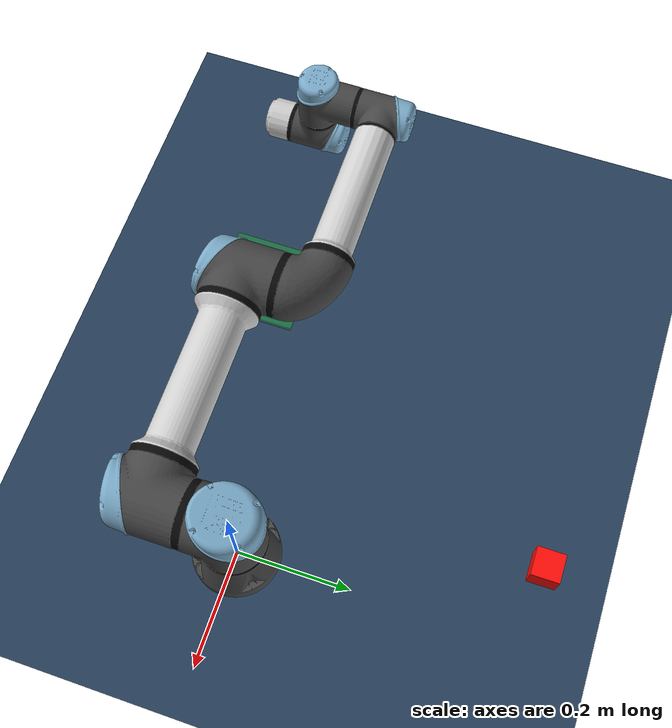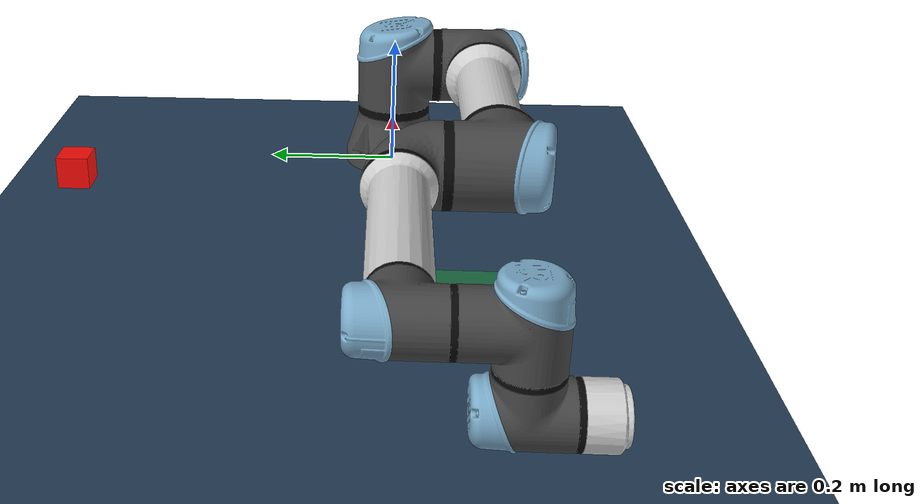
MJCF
<mujoco model="ur5e_2f85_scene">
  <compiler angle="radian" autolimits="true"/>

  <option integrator="implicitfast" cone="elliptic" impratio="10" viscosity="0.1"/>

  <statistic center="0.3 0 0.45" extent="0.9"/>

  <visual>
    <headlight diffuse="0.6 0.6 0.6" ambient="0.15 0.15 0.15" specular="0 0 0"/>
    <rgba haze="0.15 0.25 0.35 1"/>
    <global azimuth="120" elevation="-20"/>
  </visual>

  <default>
    <default class="ur5e">
      <material specular="0.5" shininess="0.25"/>
      <joint axis="0 1 0" range="-6.28319 6.28319" armature="0.1"/>
      <general gaintype="fixed" biastype="affine" ctrlrange="-6.2831 6.2831" gainprm="2000" biasprm="0 -2000 -400"
        forcerange="-150 150"/>
      <default class="size3">
        <default class="size3_limited">
          <joint range="-3.1415 3.1415"/>
          <general ctrlrange="-3.1415 3.1415"/>
        </default>
      </default>
      <default class="size1">
        <general gainprm="500" biasprm="0 -500 -100" forcerange="-28 28"/>
      </default>
      <default class="visual">
        <geom type="mesh" contype="0" conaffinity="0" group="2"/>
      </default>
      <default class="collision">
        <geom type="capsule" group="3"/>
        <default class="eef_collision">
          <geom type="cylinder"/>
        </default>
      </default>
      <site size="0.001" rgba="0.5 0.5 0.5 0.3" group="4"/>
    </default>

    <default class="2f85">
      <mesh scale="0.001 0.001 0.001"/>
      <general biastype="affine"/>
      <joint axis="1 0 0"/>
      <default class="driver">
        <joint range="0 0.8" armature="0.005" damping="0.1" solimplimit="0.95 0.99 0.001" solreflimit="0.005 1"/>
      </default>
      <default class="follower">
        <joint range="-0.872664 0.872664" armature="0.001" pos="0 -0.018 0.0065" solimplimit="0.95 0.99 0.001"
          solreflimit="0.005 1"/>
      </default>
      <default class="spring_link">
        <joint range="-0.29670597283 0.8" armature="0.001" stiffness="0.05" springref="2.62" damping="0.00125"/>
      </default>
      <default class="coupler">
        <joint range="-1.57 0" armature="0.001" solimplimit="0.95 0.99 0.001" solreflimit="0.005 1"/>
      </default>
      <default class="gripper_visual">
        <geom type="mesh" contype="0" conaffinity="0" group="2"/>
      </default>
      <default class="gripper_collision">
        <geom type="mesh" group="3"/>
        <default class="pad_box1">
          <geom mass="0" type="box" pos="0 -0.0026 0.03" size="0.011 0.004 0.025" friction="30.0 2.0 0.2" condim="6"
            solimp="0.95 0.99 0.001" solref="0.004 1" priority="1" rgba="0.55 0.55 0.55 1"/>
        </default>
        <default class="pad_box2">
          <geom mass="0" type="box" pos="0 -0.0026 0.005" size="0.011 0.004 0.012" friction="30.0 2.0 0.2" condim="6"
            solimp="0.95 0.99 0.001" solref="0.004 1" priority="1" rgba="0.45 0.45 0.45 1"/>
        </default>
      </default>
    </default>
  </default>

  <asset>
    <texture type="skybox" builtin="gradient" rgb1="0.3 0.5 0.7" rgb2="0 0 0" width="512" height="3072"/>
    <texture type="2d" name="groundplane" builtin="checker" mark="edge" rgb1="0.2 0.3 0.4" rgb2="0.1 0.2 0.3"
      markrgb="0.8 0.8 0.8" width="300" height="300"/>
    <material name="groundplane" texture="groundplane" texuniform="true" texrepeat="5 5" reflectance="0.2"/>

    <material class="ur5e" name="black" rgba="0.033 0.033 0.033 1"/>
    <material class="ur5e" name="jointgray" rgba="0.278 0.278 0.278 1"/>
    <material class="ur5e" name="linkgray" rgba="0.82 0.82 0.82 1"/>
    <material class="ur5e" name="urblue" rgba="0.49 0.678 0.8 1"/>

    <material name="metal" rgba="0.58 0.58 0.58 1"/>
    <material name="silicone" rgba="0.1882 0.1882 0.1882 1"/>
    <material name="gray" rgba="0.4627 0.4627 0.4627 1"/>

    <mesh file="universal_robots_ur5e/assets/base_0.obj"/>
    <mesh file="universal_robots_ur5e/assets/base_1.obj"/>
    <mesh file="universal_robots_ur5e/assets/shoulder_0.obj"/>
    <mesh file="universal_robots_ur5e/assets/shoulder_1.obj"/>
    <mesh file="universal_robots_ur5e/assets/shoulder_2.obj"/>
    <mesh file="universal_robots_ur5e/assets/upperarm_0.obj"/>
    <mesh file="universal_robots_ur5e/assets/upperarm_1.obj"/>
    <mesh file="universal_robots_ur5e/assets/upperarm_2.obj"/>
    <mesh file="universal_robots_ur5e/assets/upperarm_3.obj"/>
    <mesh file="universal_robots_ur5e/assets/forearm_0.obj"/>
    <mesh file="universal_robots_ur5e/assets/forearm_1.obj"/>
    <mesh file="universal_robots_ur5e/assets/forearm_2.obj"/>
    <mesh file="universal_robots_ur5e/assets/forearm_3.obj"/>
    <mesh file="universal_robots_ur5e/assets/wrist1_0.obj"/>
    <mesh file="universal_robots_ur5e/assets/wrist1_1.obj"/>
    <mesh file="universal_robots_ur5e/assets/wrist1_2.obj"/>
    <mesh file="universal_robots_ur5e/assets/wrist2_0.obj"/>
    <mesh file="universal_robots_ur5e/assets/wrist2_1.obj"/>
    <mesh file="universal_robots_ur5e/assets/wrist2_2.obj"/>
    <mesh file="universal_robots_ur5e/assets/wrist3.obj"/>

    <mesh class="2f85" file="robotiq_2f85/assets/base_mount.stl"/>
    <mesh class="2f85" file="robotiq_2f85/assets/base.stl"/>
    <mesh class="2f85" file="robotiq_2f85/assets/driver.stl"/>
    <mesh class="2f85" file="robotiq_2f85/assets/coupler.stl"/>
    <mesh class="2f85" file="robotiq_2f85/assets/follower.stl"/>
    <mesh class="2f85" file="robotiq_2f85/assets/pad.stl"/>
    <mesh class="2f85" file="robotiq_2f85/assets/silicone_pad.stl"/>
    <mesh class="2f85" file="robotiq_2f85/assets/spring_link.stl"/>
  </asset>

  <worldbody>
    <light pos="0 0 1.5" dir="0 0 -1" directional="true"/>
    <geom name="floor" size="0 0 0.05" type="plane" material="groundplane"/>
    <camera name="top_camera" pos="-0.32 0.18 1.35" xyaxes="1 0 0 0 1 0" fovy="55"/>
    <body name="place_marker" pos="-0.499 -0.134 0.005">
      <geom type="box" size="0.08 0.08 0.005" rgba="0.1 0.7 0.2 0.45" contype="0" conaffinity="0"/>
    </body>

    <body name="base" quat="0 0 0 -1" childclass="ur5e">
      <inertial mass="4.0" pos="0 0 0" diaginertia="0.00443333156 0.00443333156 0.0072"/>
      <geom mesh="base_0" material="black" class="visual"/>
      <geom mesh="base_1" material="jointgray" class="visual"/>
      <body name="shoulder_link" pos="0 0 0.163">
        <inertial mass="3.7" pos="0 0 0" diaginertia="0.0102675 0.0102675 0.00666"/>
        <joint name="shoulder_pan_joint" class="size3" axis="0 0 1"/>
        <geom mesh="shoulder_0" material="urblue" class="visual"/>
        <geom mesh="shoulder_1" material="black" class="visual"/>
        <geom mesh="shoulder_2" material="jointgray" class="visual"/>
        <geom class="collision" size="0.06 0.06" pos="0 0 -0.04"/>
        <body name="upper_arm_link" pos="0 0.138 0" quat="1 0 1 0">
          <inertial mass="8.393" pos="0 0 0.2125" diaginertia="0.133886 0.133886 0.0151074"/>
          <joint name="shoulder_lift_joint" class="size3"/>
          <geom mesh="upperarm_0" material="linkgray" class="visual"/>
          <geom mesh="upperarm_1" material="black" class="visual"/>
          <geom mesh="upperarm_2" material="jointgray" class="visual"/>
          <geom mesh="upperarm_3" material="urblue" class="visual"/>
          <geom class="collision" pos="0 -0.04 0" quat="1 1 0 0" size="0.06 0.06"/>
          <geom class="collision" size="0.05 0.2" pos="0 0 0.2"/>
          <body name="forearm_link" pos="0 -0.131 0.425">
            <inertial mass="2.275" pos="0 0 0.196" diaginertia="0.0311796 0.0311796 0.004095"/>
            <joint name="elbow_joint" class="size3_limited"/>
            <geom mesh="forearm_0" material="urblue" class="visual"/>
            <geom mesh="forearm_1" material="linkgray" class="visual"/>
            <geom mesh="forearm_2" material="black" class="visual"/>
            <geom mesh="forearm_3" material="jointgray" class="visual"/>
            <geom class="collision" pos="0 0.08 0" quat="1 1 0 0" size="0.055 0.06"/>
            <geom class="collision" size="0.038 0.19" pos="0 0 0.2"/>
            <body name="wrist_1_link" pos="0 0 0.392" quat="1 0 1 0">
              <inertial mass="1.219" pos="0 0.127 0" diaginertia="0.0025599 0.0025599 0.0021942"/>
              <joint name="wrist_1_joint" class="size1"/>
              <geom mesh="wrist1_0" material="black" class="visual"/>
              <geom mesh="wrist1_1" material="urblue" class="visual"/>
              <geom mesh="wrist1_2" material="jointgray" class="visual"/>
              <geom class="collision" pos="0 0.05 0" quat="1 1 0 0" size="0.04 0.07"/>
              <body name="wrist_2_link" pos="0 0.127 0">
                <inertial mass="1.219" pos="0 0 0.1" diaginertia="0.0025599 0.0025599 0.0021942"/>
                <joint name="wrist_2_joint" axis="0 0 1" class="size1"/>
                <geom mesh="wrist2_0" material="black" class="visual"/>
                <geom mesh="wrist2_1" material="urblue" class="visual"/>
                <geom mesh="wrist2_2" material="jointgray" class="visual"/>
                <geom class="collision" size="0.04 0.06" pos="0 0 0.04"/>
                <geom class="collision" pos="0 0.02 0.1" quat="1 1 0 0" size="0.04 0.04"/>
                <body name="wrist_3_link" pos="0 0 0.1">
                  <inertial mass="0.1889" pos="0 0.0771683 0" quat="1 0 0 1"
                    diaginertia="0.000132134 9.90863e-05 9.90863e-05"/>
                  <joint name="wrist_3_joint" class="size1"/>
                  <geom material="linkgray" mesh="wrist3" class="visual"/>
                  <geom class="eef_collision" pos="0 0.08 0" quat="1 1 0 0" size="0.04 0.02"/>
                  <site name="attachment_site" pos="0 0.1 0" quat="-1 1 0 0"/>

                  <body name="base_mount" pos="0 0.1 0.007" quat="-1 1 0 0" childclass="2f85">
                    <geom class="gripper_visual" mesh="base_mount" material="black"/>
                    <geom class="gripper_collision" mesh="base_mount"/>
                    <body name="gripper_base" pos="0 0 0.0038" quat="1 0 0 -1">
                      <inertial mass="0.777441" pos="0 -2.70394e-05 0.0354675" quat="1 -0.00152849 0 0"
                        diaginertia="0.000260285 0.000225381 0.000152708"/>
                      <geom class="gripper_visual" mesh="base" material="black"/>
                      <geom class="gripper_collision" mesh="base"/>
                      <site name="pinch" pos="0 0 0.145" type="sphere" group="5" rgba="0.9 0.9 0.9 1" size="0.005"/>
                      <camera name="gripper_depth_camera" pos="0 0 0.23" xyaxes="1 0 0 0 -1 0" fovy="70"/>
                      <body name="right_driver" pos="0 0.0306011 0.054904">
                        <inertial mass="0.00899563" pos="2.96931e-12 0.0177547 0.00107314" quat="0.681301 0.732003 0 0"
                          diaginertia="1.72352e-06 1.60906e-06 3.22006e-07"/>
                        <joint name="right_driver_joint" class="driver"/>
                        <geom class="gripper_visual" mesh="driver" material="gray"/>
                        <geom class="gripper_collision" mesh="driver"/>
                        <body name="right_coupler" pos="0 0.0315 -0.0041">
                          <inertial mass="0.0140974" pos="0 0.00301209 0.0232175" quat="0.705636 -0.0455904 0.0455904 0.705636"
                            diaginertia="4.16206e-06 3.52216e-06 8.88131e-07"/>
                          <joint name="right_coupler_joint" class="coupler"/>
                          <geom class="gripper_visual" mesh="coupler" material="black"/>
                          <geom class="gripper_collision" mesh="coupler"/>
                        </body>
                      </body>
                      <body name="right_spring_link" pos="0 0.0132 0.0609">
                        <inertial mass="0.0221642" pos="-8.65005e-09 0.0181624 0.0212658" quat="0.663403 -0.244737 0.244737 0.663403"
                          diaginertia="8.96853e-06 6.71733e-06 2.63931e-06"/>
                        <joint name="right_spring_link_joint" class="spring_link"/>
                        <geom class="gripper_visual" mesh="spring_link" material="black"/>
                        <geom class="gripper_collision" mesh="spring_link"/>
                        <body name="right_follower" pos="0 0.055 0.0375">
                          <inertial mass="0.0125222" pos="0 -0.011046 0.0124786" quat="1 0.1664 0 0"
                            diaginertia="2.67415e-06 2.4559e-06 6.02031e-07"/>
                          <joint name="right_follower_joint" class="follower"/>
                          <geom class="gripper_visual" mesh="follower" material="black"/>
                          <geom class="gripper_collision" mesh="follower"/>
                          <body name="right_pad" pos="0 -0.0189 0.01352">
                            <geom class="pad_box1" name="right_pad1"/>
                            <geom class="pad_box2" name="right_pad2"/>
                            <inertial mass="0.0035" pos="0 -0.0025 0.0185" quat="0.707107 0 0 0.707107"
                              diaginertia="4.73958e-07 3.64583e-07 1.23958e-07"/>
                            <geom class="gripper_visual" mesh="pad"/>
                            <body name="right_silicone_pad">
                              <geom class="gripper_visual" mesh="silicone_pad" material="black"/>
                            </body>
                          </body>
                        </body>
                      </body>

                      <body name="left_driver" pos="0 -0.0306011 0.054904" quat="0 0 0 1">
                        <inertial mass="0.00899563" pos="0 0.0177547 0.00107314" quat="0.681301 0.732003 0 0"
                          diaginertia="1.72352e-06 1.60906e-06 3.22006e-07"/>
                        <joint name="left_driver_joint" class="driver"/>
                        <geom class="gripper_visual" mesh="driver" material="gray"/>
                        <geom class="gripper_collision" mesh="driver"/>
                        <body name="left_coupler" pos="0 0.0315 -0.0041">
                          <inertial mass="0.0140974" pos="0 0.00301209 0.0232175" quat="0.705636 -0.0455904 0.0455904 0.705636"
                            diaginertia="4.16206e-06 3.52216e-06 8.88131e-07"/>
                          <joint name="left_coupler_joint" class="coupler"/>
                          <geom class="gripper_visual" mesh="coupler" material="black"/>
                          <geom class="gripper_collision" mesh="coupler"/>
                        </body>
                      </body>
                      <body name="left_spring_link" pos="0 -0.0132 0.0609" quat="0 0 0 1">
                        <inertial mass="0.0221642" pos="-8.65005e-09 0.0181624 0.0212658" quat="0.663403 -0.244737 0.244737 0.663403"
                          diaginertia="8.96853e-06 6.71733e-06 2.63931e-06"/>
                        <joint name="left_spring_link_joint" class="spring_link"/>
                        <geom class="gripper_visual" mesh="spring_link" material="black"/>
                        <geom class="gripper_collision" mesh="spring_link"/>
                        <body name="left_follower" pos="0 0.055 0.0375">
                          <inertial mass="0.0125222" pos="0 -0.011046 0.0124786" quat="1 0.1664 0 0"
                            diaginertia="2.67415e-06 2.4559e-06 6.02031e-07"/>
                          <joint name="left_follower_joint" class="follower"/>
                          <geom class="gripper_visual" mesh="follower" material="black"/>
                          <geom class="gripper_collision" mesh="follower"/>
                          <body name="left_pad" pos="0 -0.0189 0.01352">
                            <geom class="pad_box1" name="left_pad1"/>
                            <geom class="pad_box2" name="left_pad2"/>
                            <inertial mass="0.0035" pos="0 -0.0025 0.0185" quat="1 0 0 1"
                              diaginertia="4.73958e-07 3.64583e-07 1.23958e-07"/>
                            <geom class="gripper_visual" mesh="pad"/>
                            <body name="left_silicone_pad">
                              <geom class="gripper_visual" mesh="silicone_pad" material="black"/>
                            </body>
                          </body>
                        </body>
                      </body>
                    </body>
                  </body>
                </body>
              </body>
            </body>
          </body>
        </body>
      </body>
    </body>

    <body name="demo_object" pos="-0.134 0.499 0.025">
      <freejoint/>
      <geom name="demo_object_geom" type="box" size="0.025 0.025 0.025" mass="0.005" rgba="1 0.05 0.03 1"
        friction="30.0 2.0 0.2" condim="6" solimp="0.95 0.99 0.001" solref="0.004 1" priority="1"/>
    </body>
  </worldbody>

  <contact>
    <exclude body1="gripper_base" body2="left_driver"/>
    <exclude body1="gripper_base" body2="right_driver"/>
    <exclude body1="gripper_base" body2="left_spring_link"/>
    <exclude body1="gripper_base" body2="right_spring_link"/>
    <exclude body1="right_coupler" body2="right_follower"/>
    <exclude body1="left_coupler" body2="left_follower"/>
  </contact>

  <tendon>
    <fixed name="split">
      <joint joint="right_driver_joint" coef="0.5"/>
      <joint joint="left_driver_joint" coef="0.5"/>
    </fixed>
  </tendon>

  <equality>
    <connect anchor="0 0 0" body1="right_follower" body2="right_coupler" solimp="0.95 0.99 0.001" solref="0.005 1"/>
    <connect anchor="0 0 0" body1="left_follower" body2="left_coupler" solimp="0.95 0.99 0.001" solref="0.005 1"/>
    <joint joint1="right_driver_joint" joint2="left_driver_joint" polycoef="0 1 0 0 0" solimp="0.95 0.99 0.001"
      solref="0.005 1"/>
  </equality>

  <actuator>
    <general class="size3" name="shoulder_pan" joint="shoulder_pan_joint"/>
    <general class="size3" name="shoulder_lift" joint="shoulder_lift_joint"/>
    <general class="size3_limited" name="elbow" joint="elbow_joint"/>
    <general class="size1" name="wrist_1" joint="wrist_1_joint"/>
    <general class="size1" name="wrist_2" joint="wrist_2_joint"/>
    <general class="size1" name="wrist_3" joint="wrist_3_joint"/>
    <general class="2f85" name="fingers_actuator" tendon="split" forcerange="-300 300" ctrlrange="0 255"
      gainprm="1.2 0 0" biasprm="0 -180 -20"/>
  </actuator>

  <keyframe>
    <key name="home" qpos="-1.5708 -1.5708 1.5708 -1.5708 -1.5708 0 0.8 0 0 0 0.8 0 0 0"
      ctrl="-1.5708 -1.5708 1.5708 -1.5708 -1.5708 0 255"/>
  </keyframe>
</mujoco>
